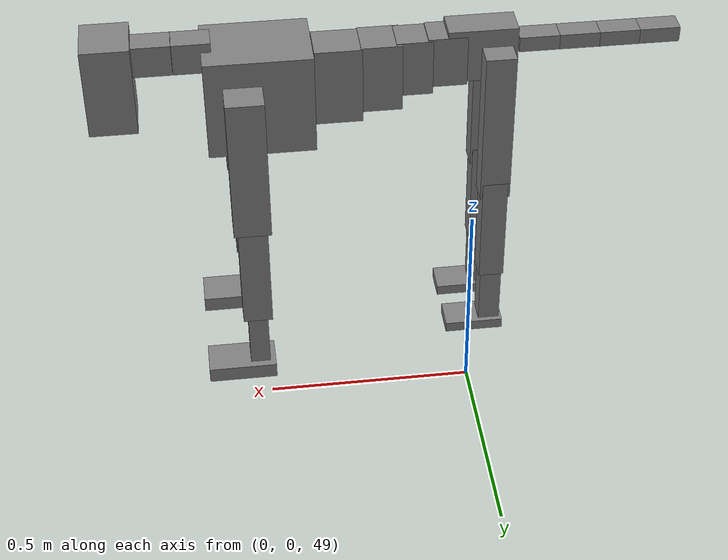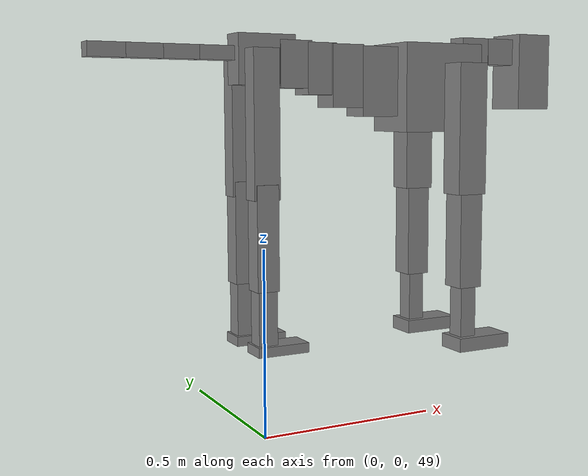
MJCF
<mujoco model="dog">

    <default>
        <joint armature="0.02" stiffness="1" damping="0.2" limited="true"/>
        <geom condim="3" friction="1 0.05 0.05" margin="0.01"/>
        <motor ctrllimited="true" ctrlrange="-1.0 1.0" forcelimited="true" gear="50"/>
    </default>

    <compiler inertiafromgeom="true" angle="radian"/>

    <option timestep="0.016" iterations="50" tolerance="1e-10" solver="Newton" jacobian="dense" cone="pyramidal"/>

    <size nconmax="20000" njmax="60000" nstack="5000000"/>
    <visual>
        <map force="0.1" zfar="30"/>
        <rgba haze="0.15 0.25 0.35 1"/>
        <quality shadowsize="2048"/>
        <global offwidth="800" offheight="800"/>
    </visual>

    <asset>
        <texture type="skybox" builtin="gradient" rgb1="0.3 0.5 0.7" rgb2="0 0 0" width="512" height="512"/>
        <texture name="texplane" type="2d" builtin="checker" rgb1=".2 .3 .4" rgb2=".1 0.15 0.2" width="512" height="512"
                 mark="cross" markrgb=".8 .8 .8"/>
        <texture name="texgeom" type="cube" builtin="flat" mark="cross" width="127" height="1278" rgb1="0.8 0.6 0.4"
                 rgb2="0.8 0.6 0.4" markrgb="1 1 1" random="0.01"/>

        <material name="matplane" reflectance="0.3" texture="texplane" texrepeat="1 1" texuniform="true"/>
        <material name="matgeom" texture="texgeom" texuniform="true" rgba="0.8 0.6 .4 1"/>
    </asset>

    <worldbody>
        <geom name="floor" pos="0 0 0" size="0 0 .25" type="plane" material="matplane" condim="3"/>

        <light directional="false" diffuse=".2 .2 .2" specular="0 0 0" pos="0 0 5" dir="0 0 -1" castshadow="false"/>
        <light mode="targetbodycom" target="torso" directional="false" diffuse=".8 .8 .8" specular="0.3 0.3 0.3"
               pos="0 0 4.0" dir="0 0 -1"/>

        <body name="root" pos="0 0 50">
            <freejoint name="root_1"/>
            <geom type="box" pos="0 0 -0.02" size="0.0774  0.0358  0.063" density="2030"/>

            <body name="spine1" pos="0.054 0 0">
                <joint name="spine1_y" axis="0 1 0" range="0 0.7" limited="true"/>
                <geom type="box" pos="0.02375 0 -0.03" size="0.04375  0.0375  0.05985" density="2030"/>

                <body name="spine2" pos="0.0612 0 0">
                    <joint name="spine2_y" axis="0 1 0" range="-0.15 0.15" limited="true"/>
                    <geom type="box" pos="0.03555  0  -0.04" size="0.04055  0.039  0.06615" density="2030"/>

                    <body name="spine3" pos="0.0730 0 0">
                        <joint name="spine3_y" axis="0 1 0" range="-0.15 0.15" limited="true"/>
                        <geom type="box" pos="0.03555  0  -0.057" size="0.04555  0.0445  0.081" density="2030"/>

                        <body name="spine4" pos="0.0780 0 0">
                            <joint name="spine4_y" axis="0 1 0" range="-0.15 0.15" limited="true"/>
                            <geom type="box" pos="0.05265  0  -0.07" size="0.05265  0.045  0.09135" density="2030"/>

                            <body name="torso" pos="0.1082 0 0">
                                <joint name="torso_y" axis="0 1 0" range="-0.15 0.15" limited="true"/>
                                <geom type="box" pos="0.11925  0  -0.085" size="0.11925  0.085  0.11745"
                                      density="2030"/>

                                <body name="neck1" pos="0.2160  0   0.0180">
                                    <joint name="neck1_y" axis="0 1 0" range="-1.2  -1" limited="true"/>
                                    <geom type="box" pos="0.0423  0  0" size="0.0423  0.03  0.036" density="2325"/>

                                    <body name="neck2" pos="0.0853  0  0">
                                        <joint name="neck2_y" axis="0 1 0" range="0.1  0" limited="true"/>
                                        <geom type="box" pos="0.0423  0  0" size="0.0423  0.03  0.036" density="2325"/>

                                        <body name="head" pos="0.0853  0  0">
                                            <joint name="head_y" axis="0 1 0" range="-0.3  -0.2" limited="true"/>
                                            <geom type="box" pos="0.0531  0  -0.055" size="0.0531  0.06  0.1044"
                                                  density="4030"/>

                                        </body>
                                    </body>
                                </body>

                                <body name="front_shoulder" pos="0.156  0   -0.0480">
                                    <joint name="front_shoulder_y" axis="0 1 0" range="-1 1.5" limited="true"/>
                                    <geom type="box" pos="0 0.13 -0.1464" size="0.0424  0.0363  0.1731" density="1158"/>
                                    <geom type="box" pos="0 -0.13 -0.1464" size="0.0424  0.0363  0.1731"
                                          density="1158"/>

                                    <body name="front_elbow" pos="0  0  -0.2928">
                                        <joint name="front_elbow_y" axis="0 1 0" range="-2 0" limited="true"/>
                                        <geom type="box" pos="0 0.13 -0.1386" size="0.0338  0.0345  0.1386"
                                              density="1081"/>
                                        <geom type="box" pos="0 -0.13 -0.1386" size="0.0338  0.0345  0.1386"
                                              density="1081"/>

                                        <body name="front_wrist" pos="0  0  -0.2771">
                                            <joint name="front_wrist_y" axis="0 1 0" range="-0.2 0" limited="true"/>
                                            <geom type="box" pos="0 0.13 -0.0750" size="0.0230  0.0256  0.0881"
                                                  density="1664"/>
                                            <geom type="box" pos="0 -0.13 -0.0750" size="0.0230  0.0256  0.0881"
                                                  density="1664"/>

                                            <body name="front_finger_end" pos="0  0  -0.1500">
                                                <joint name="front_finger_y" axis="0 1 0" range="-0.4 1"
                                                       limited="true"/>
                                                <geom type="box" pos="0.0434  0.13  -0.0035"
                                                      size="0.0796  0.0434  0.0185" density="1515"/>
                                                <geom type="box" pos="0.0434  -0.13  -0.0035"
                                                      size="0.0796  0.0434  0.0185" density="1515"/>

                                            </body>

                                        </body>
                                    </body>
                                </body>

                            </body>
                        </body>
                    </body>
                </body>
            </body>

            <body name="back_hip" pos="-0.03 0 -0.018">
                <joint name="back_hip_y" axis="0 1 0" range="-1.5 0.3" limited="true"/>
                <geom type="box" pos="0 0.07 -0.1624" size="0.0342  0.0269  0.1852" density="1154"/>
                <geom type="box" pos="0 -0.07 -0.1624" size="0.0342  0.0269  0.1852" density="1154"/>

                <body name="back_knee" pos="0  0  -0.3247">
                    <joint name="back_knee_y" axis="0 1 0" range="0 2.8" limited="true"/>
                    <geom type="box" pos="0 0.07 -0.1170" size="0.0291  0.0287  0.1326" density="1227"/>
                    <geom type="box" pos="0 -0.07 -0.1170" size="0.0291  0.0287  0.1326" density="1227"/>

                    <body name="back_ankle" pos="0  0  -0.2340">
                        <joint name="back_ankle_y" axis="0 1 0" range="-2.2 0" limited="true"/>
                        <geom type="box" pos="0 0.07 -0.0835" size="0.0251  0.0251  0.0948" density="1284"/>
                        <geom type="box" pos="0 -0.07 -0.0835" size="0.0251  0.0251  0.0948" density="1284"/>

                        <body name="back_toe_end" pos="0  0  -0.1671">
                            <joint name="back_toe_y" axis="0 1 0" range="-0.4 1" limited="true"/>
                            <geom type="box" pos="0.0373  0.07  0.0024" size="0.0684  0.0373  0.0126" density="1515"/>
                            <geom type="box" pos="0.0373  -0.07  0.0024" size="0.0684  0.0373  0.0126" density="1515"/>

                        </body>
                    </body>
                </body>
            </body>

            <body name="tail1" pos="-0.074 0 -0.006">
                <joint name="tail1_y" axis="0 1 0" range="-0.2 0.2" limited="true"/>
                <geom type="box" pos="-0.0536  0  0" size="0.045  0.025  0.0175" density="1587"/>

                <body name="tail2" pos="-0.09 0 0">
                    <joint name="tail2_y" axis="0 1 0" range="-0.2 0.2" limited="true"/>
                    <geom type="box" pos="-0.0536  0  0" size="0.045  0.025  0.0175" density="1587"/>

                    <body name="tail3" pos="-0.09 0 0">
                        <joint name="tail3_y" axis="0 1 0" range="-0.2 0.2" limited="true"/>
                        <geom type="box" pos="-0.0536  0  0" size="0.045  0.025  0.0175" density="1587"/>

                        <body name="tail4" pos="-0.09 0 0">
                            <joint name="tail4_y" axis="0 1 0" range="-0.2 0.2" limited="true"/>
                            <geom type="box" pos="-0.0536  0  0" size="0.045  0.025  0.0175" density="1587"/>

                        </body>
                    </body>
                </body>
            </body>
        </body>
    </worldbody>

    <actuator>
        <motor joint="spine1_y" forcerange="-150 150     "/>
        <motor joint="spine2_y" forcerange="-150 150     "/>
        <motor joint="spine3_y" forcerange="-150 150     "/>
        <motor joint="spine4_y" forcerange="-150 150     "/>
        <motor joint="torso_y" forcerange="-150 150     "/>
        <motor joint="neck1_y" forcerange="-100 100       "/>
        <motor joint="neck2_y" forcerange="-100 100       "/>
        <motor joint="head_y" forcerange="-150 150       "/>
        <motor joint="front_shoulder_y" forcerange="-195.84 145.87"/>
        <motor joint="front_elbow_y" forcerange="-172.34 178.79"/>
        <motor joint="front_wrist_y" forcerange="-92.82 111.71"/>
        <motor joint="front_finger_y" forcerange="-98.05 93.61"/>
        <motor joint="back_hip_y" forcerange="-267.29 290.77"/>
        <motor joint="back_knee_y" forcerange="-331.19 285.93"/>
        <motor joint="back_angle_y" forcerange="-169.53 132.49"/>
        <motor joint="back_toe_y" forcerange="-123.96 94.33"/>
        <motor joint="tail1_y" forcerange="-50 50     "/>
        <motor joint="tail2_y" forcerange="-50 50     "/>
        <motor joint="tail3_y" forcerange="-50 50     "/>
        <motor joint="tail4_y" forcerange="-50 50     "/>
    </actuator>
</mujoco>
